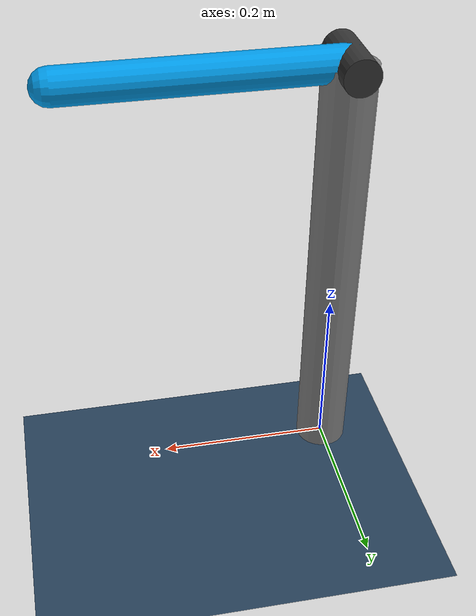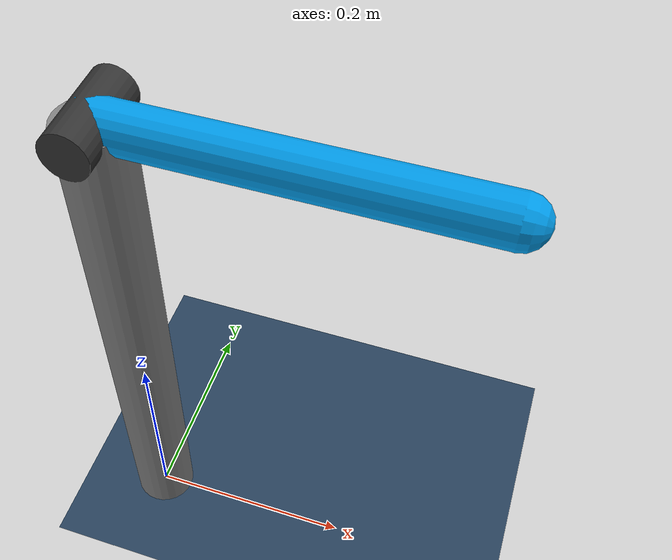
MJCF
<mujoco model="revolute_joint_position">
  <statistic center="0 0 0.1" extent="0.6" meansize=".05"/>

  <visual>
    <headlight diffuse="0.6 0.6 0.6" ambient="0.3 0.3 0.3" specular="0 0 0"/>
    <rgba haze="0.15 0.25 0.35 1"/>
    <global azimuth="-20" elevation="-20" ellipsoidinertia="true"/>
  </visual>

  <asset>
    <texture type="skybox" builtin="gradient" rgb1="0.3 0.5 0.7" rgb2="0 0 0" width="512" height="3072"/>
    <texture type="2d" name="groundplane" builtin="checker" mark="edge" rgb1="0.2 0.3 0.4" rgb2="0.1 0.2 0.3"
      markrgb="0.8 0.8 0.8" width="300" height="300"/>
    <material name="groundplane" texture="groundplane" texuniform="true" texrepeat="5 5" reflectance="0.2"/>
  </asset>

  <option gravity="0 0 -9.81" timestep="0.002"/>

  <default>
    <joint damping="0.05"/>
    <geom contype="0" conaffinity="0"/>
  </default>

  <worldbody>
    <light pos="0 0 1.5" dir="0 0 -1" directional="true"/>
    <geom name="floor" size="0 0 0.05" type="plane" material="groundplane"/>

    <geom name="post" type="cylinder" pos="0 0 0.25" size="0.03 0.25" rgba="0.5 0.5 0.5 1"/>

    <body name="arm" pos="0 0 0.5">
      <joint name="hinge" type="hinge" axis="0 1 0" pos="0 0 0" range="-180 0" solreflimit="0.004 1"/>
      <geom name="axle" type="cylinder" fromto="0 -0.04 0 0 0.04 0" size="0.02" rgba="0.2 0.2 0.2 1"/>
      <geom name="link" type="capsule" fromto="0 0 0 0.3 0 0" size="0.02" rgba="0 0.6 0.9 1" mass="0.5"/>
      <site name="tip" pos="0.3 0 0" size="0.01" rgba="1 0.3 0 1"/>
    </body>
  </worldbody>

  <sensor>
    <jointpos name="hinge_pos" joint="hinge"/>
    <jointvel name="hinge_vel" joint="hinge"/>
    <framepos name="tip_pos" objtype="site" objname="tip"/>
  </sensor>

  <actuator>
    <position name="position_servo" joint="hinge" kp="10" kv="1" ctrlrange="-3.14 0"/>
  </actuator>
</mujoco>
